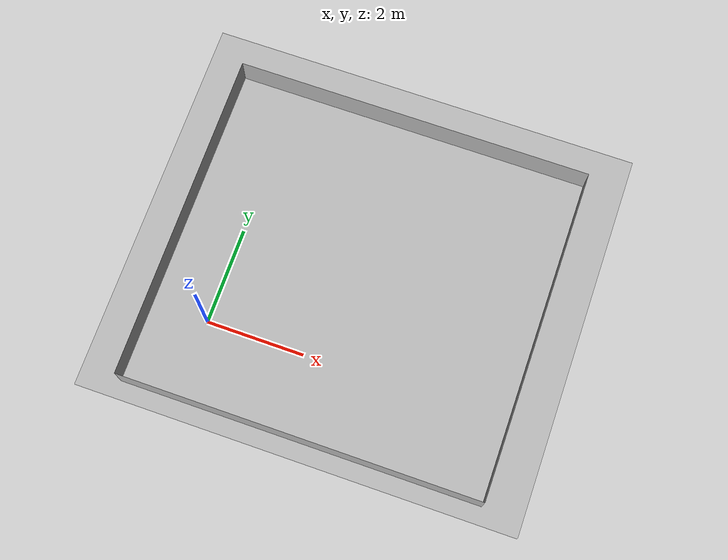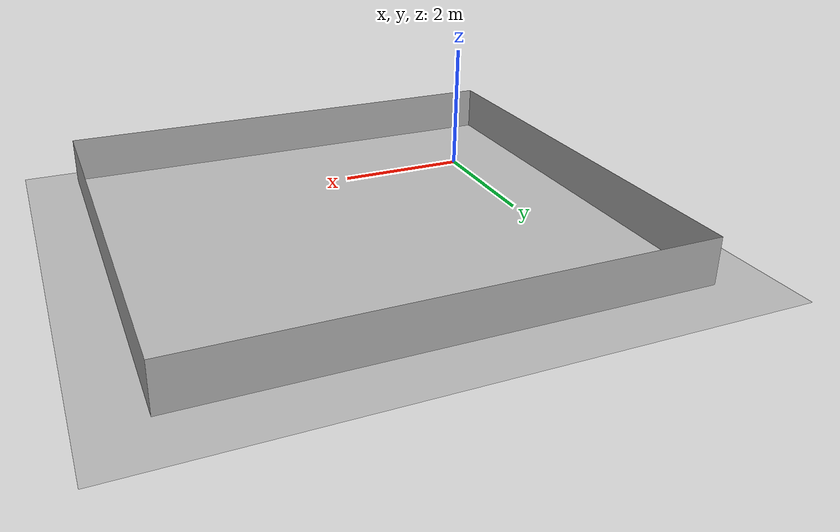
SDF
<?xml version='1.0' encoding='utf-8'?>
<sdf version="1.4">
<model name="template_model">
<link name="track">
<collision name="collision">
<pose>0 0 0 0 0 0</pose>
<geometry>
<mesh>
<uri>model://meshes/Amoeba/Amoeba_collision.dae</uri>
</mesh>
</geometry>
</collision>
<visual name="visual">
<pose>0 0 0 0 0 0</pose>
<geometry>
<mesh>
<uri>model://meshes/Amoeba/Amoeba.dae</uri>
</mesh>
</geometry>
</visual>
<visual name="wall">
<pose>0 0 0 0 0 0</pose>
<geometry>
<mesh>
<uri>model://meshes/Amoeba/wall.dae</uri>
</mesh>
</geometry>
</visual>
</link>
<static>1</static>
</model>
</sdf>
